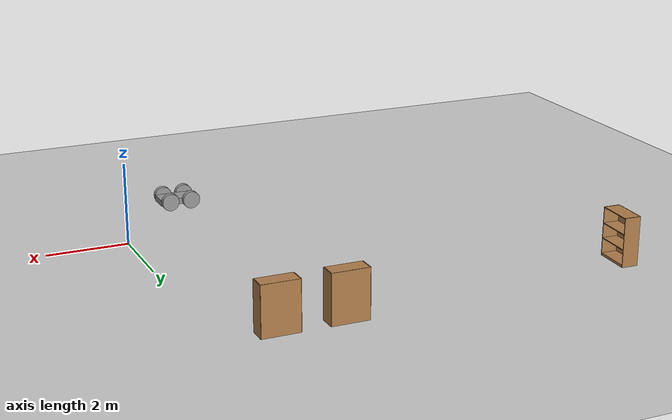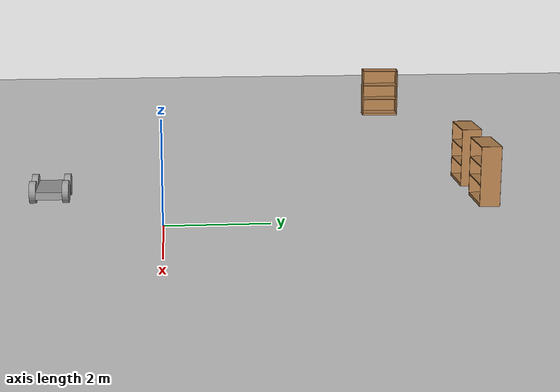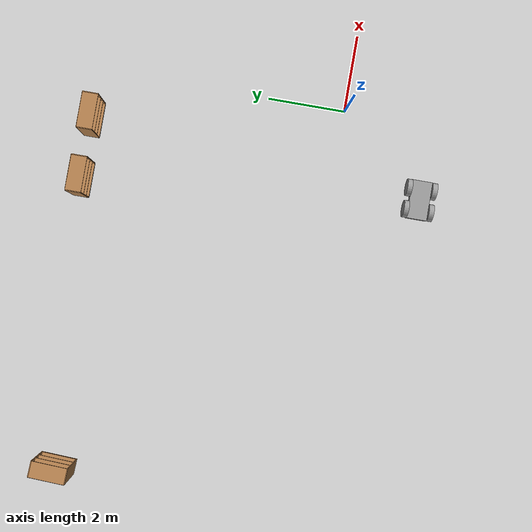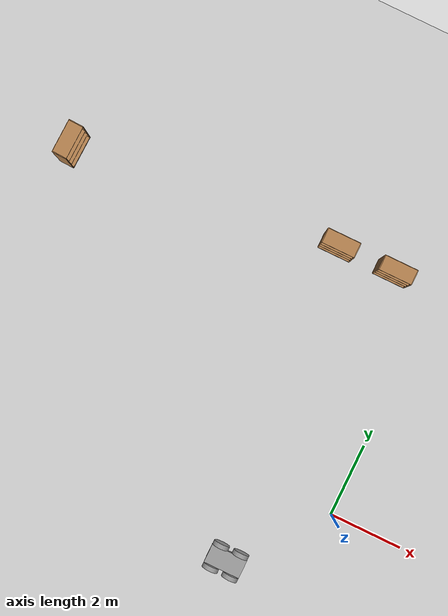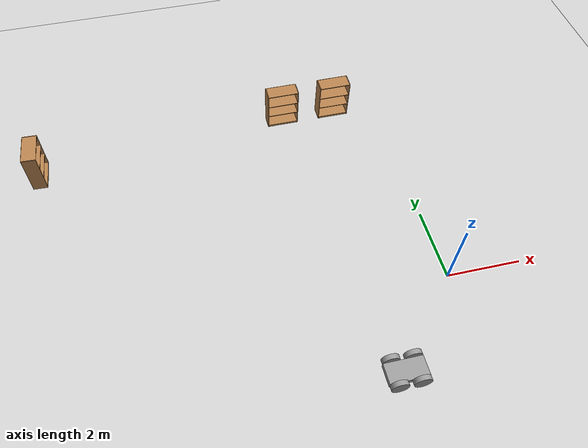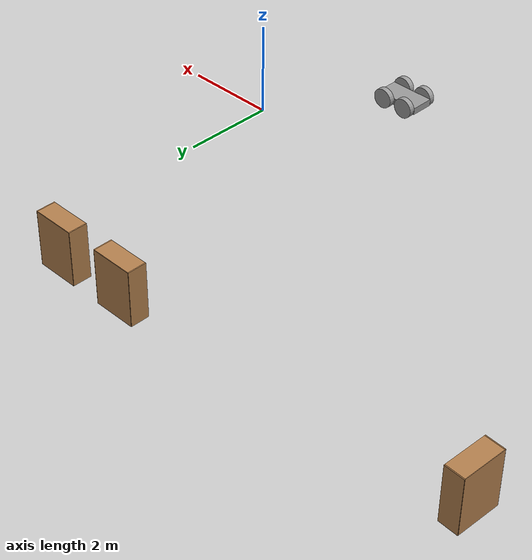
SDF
<sdf version="1.6">
 <world name="default">
  <model name="ground_plane">
   <static>1</static>
   <link name="link">
    <collision name="collision">
     <geometry><plane><normal>0 0 1</normal><size>100 100</size></plane></geometry>
     <surface>
      <contact><collide_bitmask>65535</collide_bitmask></contact>
      <friction><ode><mu>100</mu><mu2>50</mu2></ode></friction>
     </surface>
    </collision>
    <visual name="visual">
     <cast_shadows>0</cast_shadows>
     <geometry><plane><normal>0 0 1</normal><size>100 100</size></plane></geometry>
     <material>
      <script><uri>file://media/materials/scripts/gazebo.material</uri><name>Gazebo/Grey</name></script>
     </material>
    </visual>
   </link>
  </model>
  <model name="bookshelf_2">
   <static>1</static>
   <link name="link">
    <inertial><mass>1</mass></inertial>
    <collision name="back">
     <pose>0 0.005 0.6 0 -0 0</pose>
     <geometry><box><size>0.9 0.01 1.2</size></box></geometry>
    </collision>
    <visual name="visual1">
     <pose>0 0.005 0.6 0 -0 0</pose>
     <geometry><box><size>0.9 0.01 1.2</size></box></geometry>
     <material>
      <script><uri>file://media/materials/scripts/gazebo.material</uri><name>Gazebo/Wood</name></script>
     </material>
    </visual>
    <collision name="left_side">
     <pose>0.45 -0.195 0.6 0 -0 0</pose>
     <geometry><box><size>0.02 0.4 1.2</size></box></geometry>
    </collision>
    <visual name="visual2">
     <pose>0.45 -0.195 0.6 0 -0 0</pose>
     <geometry><box><size>0.02 0.4 1.2</size></box></geometry>
     <material>
      <script><uri>file://media/materials/scripts/gazebo.material</uri><name>Gazebo/Wood</name></script>
     </material>
    </visual>
    <collision name="right_side">
     <pose>-0.45 -0.195 0.6 0 -0 0</pose>
     <geometry><box><size>0.02 0.4 1.2</size></box></geometry>
    </collision>
    <visual name="visual3">
     <pose>-0.45 -0.195 0.6 0 -0 0</pose>
     <geometry><box><size>0.02 0.4 1.2</size></box></geometry>
     <material>
      <script><uri>file://media/materials/scripts/gazebo.material</uri><name>Gazebo/Wood</name></script>
     </material>
    </visual>
    <collision name="bottom">
     <pose>0 -0.195 0.03 0 -0 0</pose>
     <geometry><box><size>0.88 0.4 0.06</size></box></geometry>
    </collision>
    <visual name="visual4">
     <pose>0 -0.195 0.03 0 -0 0</pose>
     <geometry><box><size>0.88 0.4 0.06</size></box></geometry>
     <material>
      <script><uri>file://media/materials/scripts/gazebo.material</uri><name>Gazebo/Wood</name></script>
     </material>
    </visual>
    <collision name="top">
     <pose>0 -0.195 1.19 0 -0 0</pose>
     <geometry><box><size>0.88 0.4 0.02</size></box></geometry>
    </collision>
    <visual name="visual5">
     <pose>0 -0.195 1.19 0 -0 0</pose>
     <geometry><box><size>0.88 0.4 0.02</size></box></geometry>
     <material>
      <script><uri>file://media/materials/scripts/gazebo.material</uri><name>Gazebo/Wood</name></script>
     </material>
    </visual>
    <collision name="low_shelf">
     <pose>0 -0.195 0.43 0 -0 0</pose>
     <geometry><box><size>0.88 0.4 0.02</size></box></geometry>
    </collision>
    <visual name="visual6">
     <pose>0 -0.195 0.43 0 -0 0</pose>
     <geometry><box><size>0.88 0.4 0.02</size></box></geometry>
     <material>
      <script><uri>file://media/materials/scripts/gazebo.material</uri><name>Gazebo/Wood</name></script>
     </material>
    </visual>
    <collision name="high_shelf">
     <pose>0 -0.195 0.8 0 -0 0</pose>
     <geometry><box><size>0.88 0.4 0.02</size></box></geometry>
    </collision>
    <visual name="visual7">
     <pose>0 -0.195 0.8 0 -0 0</pose>
     <geometry><box><size>0.88 0.4 0.02</size></box></geometry>
     <material>
      <script><uri>file://media/materials/scripts/gazebo.material</uri><name>Gazebo/Wood</name></script>
     </material>
    </visual>
   </link>
   <pose>-2.89056 6.54728 0 0 -0 0</pose>
  </model>
  <model name="bookshelf">
   <static>1</static>
   <link name="link">
    <inertial><mass>1</mass></inertial>
    <collision name="back">
     <pose>0 0.005 0.6 0 -0 0</pose>
     <geometry><box><size>0.9 0.01 1.2</size></box></geometry>
    </collision>
    <visual name="visual1">
     <pose>0 0.005 0.6 0 -0 0</pose>
     <geometry><box><size>0.9 0.01 1.2</size></box></geometry>
     <material>
      <script><uri>file://media/materials/scripts/gazebo.material</uri><name>Gazebo/Wood</name></script>
     </material>
    </visual>
    <collision name="left_side">
     <pose>0.45 -0.195 0.6 0 -0 0</pose>
     <geometry><box><size>0.02 0.4 1.2</size></box></geometry>
    </collision>
    <visual name="visual2">
     <pose>0.45 -0.195 0.6 0 -0 0</pose>
     <geometry><box><size>0.02 0.4 1.2</size></box></geometry>
     <material>
      <script><uri>file://media/materials/scripts/gazebo.material</uri><name>Gazebo/Wood</name></script>
     </material>
    </visual>
    <collision name="right_side">
     <pose>-0.45 -0.195 0.6 0 -0 0</pose>
     <geometry><box><size>0.02 0.4 1.2</size></box></geometry>
    </collision>
    <visual name="visual3">
     <pose>-0.45 -0.195 0.6 0 -0 0</pose>
     <geometry><box><size>0.02 0.4 1.2</size></box></geometry>
     <material>
      <script><uri>file://media/materials/scripts/gazebo.material</uri><name>Gazebo/Wood</name></script>
     </material>
    </visual>
    <collision name="bottom">
     <pose>0 -0.195 0.03 0 -0 0</pose>
     <geometry><box><size>0.88 0.4 0.06</size></box></geometry>
    </collision>
    <visual name="visual4">
     <pose>0 -0.195 0.03 0 -0 0</pose>
     <geometry><box><size>0.88 0.4 0.06</size></box></geometry>
     <material>
      <script><uri>file://media/materials/scripts/gazebo.material</uri><name>Gazebo/Wood</name></script>
     </material>
    </visual>
    <collision name="top">
     <pose>0 -0.195 1.19 0 -0 0</pose>
     <geometry><box><size>0.88 0.4 0.02</size></box></geometry>
    </collision>
    <visual name="visual5">
     <pose>0 -0.195 1.19 0 -0 0</pose>
     <geometry><box><size>0.88 0.4 0.02</size></box></geometry>
     <material>
      <script><uri>file://media/materials/scripts/gazebo.material</uri><name>Gazebo/Wood</name></script>
     </material>
    </visual>
    <collision name="low_shelf">
     <pose>0 -0.195 0.43 0 -0 0</pose>
     <geometry><box><size>0.88 0.4 0.02</size></box></geometry>
    </collision>
    <visual name="visual6">
     <pose>0 -0.195 0.43 0 -0 0</pose>
     <geometry><box><size>0.88 0.4 0.02</size></box></geometry>
     <material>
      <script><uri>file://media/materials/scripts/gazebo.material</uri><name>Gazebo/Wood</name></script>
     </material>
    </visual>
    <collision name="high_shelf">
     <pose>0 -0.195 0.8 0 -0 0</pose>
     <geometry><box><size>0.88 0.4 0.02</size></box></geometry>
    </collision>
    <visual name="visual7">
     <pose>0 -0.195 0.8 0 -0 0</pose>
     <geometry><box><size>0.88 0.4 0.02</size></box></geometry>
     <material>
      <script><uri>file://media/materials/scripts/gazebo.material</uri><name>Gazebo/Wood</name></script>
     </material>
    </visual>
   </link>
   <pose>-1.31133 6.55446 0 0 -0 0</pose>
  </model>
  <model name="bookshelf_0">
   <static>1</static>
   <link name="link">
    <inertial><mass>1</mass></inertial>
    <collision name="back">
     <pose>0 0.005 0.6 0 -0 0</pose>
     <geometry><box><size>0.9 0.01 1.2</size></box></geometry>
    </collision>
    <visual name="visual1">
     <pose>0 0.005 0.6 0 -0 0</pose>
     <geometry><box><size>0.9 0.01 1.2</size></box></geometry>
     <material>
      <script><uri>file://media/materials/scripts/gazebo.material</uri><name>Gazebo/Wood</name></script>
     </material>
    </visual>
    <collision name="left_side">
     <pose>0.45 -0.195 0.6 0 -0 0</pose>
     <geometry><box><size>0.02 0.4 1.2</size></box></geometry>
    </collision>
    <visual name="visual2">
     <pose>0.45 -0.195 0.6 0 -0 0</pose>
     <geometry><box><size>0.02 0.4 1.2</size></box></geometry>
     <material>
      <script><uri>file://media/materials/scripts/gazebo.material</uri><name>Gazebo/Wood</name></script>
     </material>
    </visual>
    <collision name="right_side">
     <pose>-0.45 -0.195 0.6 0 -0 0</pose>
     <geometry><box><size>0.02 0.4 1.2</size></box></geometry>
    </collision>
    <visual name="visual3">
     <pose>-0.45 -0.195 0.6 0 -0 0</pose>
     <geometry><box><size>0.02 0.4 1.2</size></box></geometry>
     <material>
      <script><uri>file://media/materials/scripts/gazebo.material</uri><name>Gazebo/Wood</name></script>
     </material>
    </visual>
    <collision name="bottom">
     <pose>0 -0.195 0.03 0 -0 0</pose>
     <geometry><box><size>0.88 0.4 0.06</size></box></geometry>
    </collision>
    <visual name="visual4">
     <pose>0 -0.195 0.03 0 -0 0</pose>
     <geometry><box><size>0.88 0.4 0.06</size></box></geometry>
     <material>
      <script><uri>file://media/materials/scripts/gazebo.material</uri><name>Gazebo/Wood</name></script>
     </material>
    </visual>
    <collision name="top">
     <pose>0 -0.195 1.19 0 -0 0</pose>
     <geometry><box><size>0.88 0.4 0.02</size></box></geometry>
    </collision>
    <visual name="visual5">
     <pose>0 -0.195 1.19 0 -0 0</pose>
     <geometry><box><size>0.88 0.4 0.02</size></box></geometry>
     <material>
      <script><uri>file://media/materials/scripts/gazebo.material</uri><name>Gazebo/Wood</name></script>
     </material>
    </visual>
    <collision name="low_shelf">
     <pose>0 -0.195 0.43 0 -0 0</pose>
     <geometry><box><size>0.88 0.4 0.02</size></box></geometry>
    </collision>
    <visual name="visual6">
     <pose>0 -0.195 0.43 0 -0 0</pose>
     <geometry><box><size>0.88 0.4 0.02</size></box></geometry>
     <material>
      <script><uri>file://media/materials/scripts/gazebo.material</uri><name>Gazebo/Wood</name></script>
     </material>
    </visual>
    <collision name="high_shelf">
     <pose>0 -0.195 0.8 0 -0 0</pose>
     <geometry><box><size>0.88 0.4 0.02</size></box></geometry>
    </collision>
    <visual name="visual7">
     <pose>0 -0.195 0.8 0 -0 0</pose>
     <geometry><box><size>0.88 0.4 0.02</size></box></geometry>
     <material>
      <script><uri>file://media/materials/scripts/gazebo.material</uri><name>Gazebo/Wood</name></script>
     </material>
    </visual>
   </link>
   <pose>-10.3656 5.7332 0 0 -0 1.52719</pose>
  </model>
  <model name="wheeled_robot_0">
   <link name="link_0">
    <pose>-0 -0 -0.025902 0 -0 0</pose>
    <inertial>
     <mass>0.0772446</mass>
     <inertia>
      <ixx>0.00185631</ixx>
      <ixy>0</ixy>
      <ixz>0</ixz>
      <iyy>0.00652801</iyy>
      <iyz>0</iyz>
      <izz>0.00809275</izz>
     </inertia>
    </inertial>
    <visual name="visual">
     <geometry><box><size>0.995732 0.515491 0.150489</size></box></geometry>
     <material>
      <lighting>1</lighting>
      <script><uri>file://media/materials/scripts/gazebo.material</uri><name>Gazebo/Grey</name></script>
      <shader type="pixel"/>
      <ambient>0.3 0.3 0.3 1</ambient>
      <diffuse>0.7 0.7 0.7 1</diffuse>
      <specular>0.01 0.01 0.01 1</specular>
      <emissive>0 0 0 1</emissive>
     </material>
    </visual>
    <collision name="collision">
     <geometry><box><size>0.995732 0.515491 0.150489</size></box></geometry>
     <surface>
      <friction>
       <ode><mu>1</mu><mu2>1</mu2><fdir1>0 0 0</fdir1><slip1>0</slip1><slip2>0</slip2></ode>
       <torsional>
        <coefficient>1</coefficient>
        <patch_radius>0</patch_radius>
        <surface_radius>0</surface_radius>
        <use_patch_radius>1</use_patch_radius>
        <ode><slip>0</slip></ode>
       </torsional>
      </friction>
      <bounce><restitution_coefficient>0</restitution_coefficient><threshold>1e+06</threshold></bounce>
      <contact>
       <collide_without_contact>0</collide_without_contact>
       <collide_without_contact_bitmask>1</collide_without_contact_bitmask>
       <collide_bitmask>1</collide_bitmask>
       <ode>
        <soft_cfm>0</soft_cfm>
        <soft_erp>0.2</soft_erp>
        <kp>1e+13</kp>
        <kd>1</kd>
        <max_vel>0.01</max_vel>
        <min_depth>0</min_depth>
       </ode>
       <bullet>
        <split_impulse>1</split_impulse>
        <split_impulse_penetration_threshold>-0.01</split_impulse_penetration_threshold>
        <soft_cfm>0</soft_cfm>
        <soft_erp>0.2</soft_erp>
        <kp>1e+13</kp>
        <kd>1</kd>
       </bullet>
      </contact>
     </surface>
    </collision>
   </link>
   <link name="link_1">
    <pose>0.276969 -0.320255 0.006476 1.5708 -0 0</pose>
    <inertial>
     <mass>0.0244029</mass>
     <inertia>
      <ixx>0.00032947</ixx>
      <ixy>0</ixy>
      <ixz>0</ixz>
      <iyy>0.00032947</iyy>
      <iyz>0</iyz>
      <izz>0.00059538</izz>
     </inertia>
    </inertial>
    <visual name="visual">
     <geometry><cylinder><radius>0.220898</radius><length>0.125017</length></cylinder></geometry>
     <material>
      <lighting>1</lighting>
      <script><uri>file://media/materials/scripts/gazebo.material</uri><name>Gazebo/Grey</name></script>
      <shader type="pixel"><normal_map>__default__</normal_map></shader>
      <ambient>0.3 0.3 0.3 1</ambient>
      <diffuse>0.7 0.7 0.7 1</diffuse>
      <specular>0.01 0.01 0.01 1</specular>
      <emissive>0 0 0 1</emissive>
     </material>
    </visual>
    <collision name="collision">
     <geometry><cylinder><radius>0.220898</radius><length>0.125017</length></cylinder></geometry>
     <surface>
      <friction>
       <ode><mu>1</mu><mu2>1</mu2><fdir1>0 0 0</fdir1><slip1>0</slip1><slip2>0</slip2></ode>
       <torsional>
        <coefficient>1</coefficient>
        <patch_radius>0</patch_radius>
        <surface_radius>0</surface_radius>
        <use_patch_radius>1</use_patch_radius>
        <ode><slip>0</slip></ode>
       </torsional>
      </friction>
      <bounce><restitution_coefficient>0</restitution_coefficient><threshold>1e+06</threshold></bounce>
      <contact>
       <collide_without_contact>0</collide_without_contact>
       <collide_without_contact_bitmask>1</collide_without_contact_bitmask>
       <collide_bitmask>1</collide_bitmask>
       <ode>
        <soft_cfm>0</soft_cfm>
        <soft_erp>0.2</soft_erp>
        <kp>1e+13</kp>
        <kd>1</kd>
        <max_vel>0.01</max_vel>
        <min_depth>0</min_depth>
       </ode>
       <bullet>
        <split_impulse>1</split_impulse>
        <split_impulse_penetration_threshold>-0.01</split_impulse_penetration_threshold>
        <soft_cfm>0</soft_cfm>
        <soft_erp>0.2</soft_erp>
        <kp>1e+13</kp>
        <kd>1</kd>
       </bullet>
      </contact>
     </surface>
    </collision>
   </link>
   <link name="link_1_clone">
    <pose>-0.276969 -0.320255 0.006475 1.5708 -0 0</pose>
    <inertial>
     <mass>0.0244029</mass>
     <inertia>
      <ixx>0.00032947</ixx>
      <ixy>0</ixy>
      <ixz>0</ixz>
      <iyy>0.00032947</iyy>
      <iyz>0</iyz>
      <izz>0.00059538</izz>
     </inertia>
    </inertial>
    <visual name="visual">
     <geometry><cylinder><radius>0.220898</radius><length>0.125017</length></cylinder></geometry>
     <material>
      <lighting>1</lighting>
      <script><uri>file://media/materials/scripts/gazebo.material</uri><name>Gazebo/Grey</name></script>
      <shader type="pixel"><normal_map>__default__</normal_map></shader>
      <ambient>0.3 0.3 0.3 1</ambient>
      <diffuse>0.7 0.7 0.7 1</diffuse>
      <specular>0.01 0.01 0.01 1</specular>
      <emissive>0 0 0 1</emissive>
     </material>
    </visual>
    <collision name="collision">
     <geometry><cylinder><radius>0.220898</radius><length>0.125017</length></cylinder></geometry>
     <surface>
      <friction>
       <ode><mu>1</mu><mu2>1</mu2><fdir1>0 0 0</fdir1><slip1>0</slip1><slip2>0</slip2></ode>
       <torsional>
        <coefficient>1</coefficient>
        <patch_radius>0</patch_radius>
        <surface_radius>0</surface_radius>
        <use_patch_radius>1</use_patch_radius>
        <ode><slip>0</slip></ode>
       </torsional>
      </friction>
      <bounce><restitution_coefficient>0</restitution_coefficient><threshold>1e+06</threshold></bounce>
      <contact>
       <collide_without_contact>0</collide_without_contact>
       <collide_without_contact_bitmask>1</collide_without_contact_bitmask>
       <collide_bitmask>1</collide_bitmask>
       <ode>
        <soft_cfm>0</soft_cfm>
        <soft_erp>0.2</soft_erp>
        <kp>1e+13</kp>
        <kd>1</kd>
        <max_vel>0.01</max_vel>
        <min_depth>0</min_depth>
       </ode>
       <bullet>
        <split_impulse>1</split_impulse>
        <split_impulse_penetration_threshold>-0.01</split_impulse_penetration_threshold>
        <soft_cfm>0</soft_cfm>
        <soft_erp>0.2</soft_erp>
        <kp>1e+13</kp>
        <kd>1</kd>
       </bullet>
      </contact>
     </surface>
    </collision>
   </link>
   <link name="link_1_clone_0">
    <pose>0.276969 0.320255 0.006476 1.5708 -0 0</pose>
    <inertial>
     <mass>0.0244029</mass>
     <inertia>
      <ixx>0.00032947</ixx>
      <ixy>0</ixy>
      <ixz>0</ixz>
      <iyy>0.00032947</iyy>
      <iyz>0</iyz>
      <izz>0.00059538</izz>
     </inertia>
    </inertial>
    <visual name="visual">
     <geometry><cylinder><radius>0.220898</radius><length>0.125017</length></cylinder></geometry>
     <material>
      <lighting>1</lighting>
      <script><uri>file://media/materials/scripts/gazebo.material</uri><name>Gazebo/Grey</name></script>
      <shader type="pixel"><normal_map>__default__</normal_map></shader>
      <ambient>0.3 0.3 0.3 1</ambient>
      <diffuse>0.7 0.7 0.7 1</diffuse>
      <specular>0.01 0.01 0.01 1</specular>
      <emissive>0 0 0 1</emissive>
     </material>
    </visual>
    <collision name="collision">
     <geometry><cylinder><radius>0.220898</radius><length>0.125017</length></cylinder></geometry>
     <surface>
      <friction>
       <ode><mu>1</mu><mu2>1</mu2><fdir1>0 0 0</fdir1><slip1>0</slip1><slip2>0</slip2></ode>
       <torsional>
        <coefficient>1</coefficient>
        <patch_radius>0</patch_radius>
        <surface_radius>0</surface_radius>
        <use_patch_radius>1</use_patch_radius>
        <ode><slip>0</slip></ode>
       </torsional>
      </friction>
      <bounce><restitution_coefficient>0</restitution_coefficient><threshold>1e+06</threshold></bounce>
      <contact>
       <collide_without_contact>0</collide_without_contact>
       <collide_without_contact_bitmask>1</collide_without_contact_bitmask>
       <collide_bitmask>1</collide_bitmask>
       <ode>
        <soft_cfm>0</soft_cfm>
        <soft_erp>0.2</soft_erp>
        <kp>1e+13</kp>
        <kd>1</kd>
        <max_vel>0.01</max_vel>
        <min_depth>0</min_depth>
       </ode>
       <bullet>
        <split_impulse>1</split_impulse>
        <split_impulse_penetration_threshold>-0.01</split_impulse_penetration_threshold>
        <soft_cfm>0</soft_cfm>
        <soft_erp>0.2</soft_erp>
        <kp>1e+13</kp>
        <kd>1</kd>
       </bullet>
      </contact>
     </surface>
    </collision>
   </link>
   <link name="link_1_clone_1">
    <pose>-0.276969 0.320255 0.006476 1.5708 -0 0</pose>
    <inertial>
     <mass>0.0244029</mass>
     <inertia>
      <ixx>0.00032947</ixx>
      <ixy>0</ixy>
      <ixz>0</ixz>
      <iyy>0.00032947</iyy>
      <iyz>0</iyz>
      <izz>0.00059538</izz>
     </inertia>
    </inertial>
    <visual name="visual">
     <geometry><cylinder><radius>0.220898</radius><length>0.125017</length></cylinder></geometry>
     <material>
      <lighting>1</lighting>
      <script><uri>file://media/materials/scripts/gazebo.material</uri><name>Gazebo/Grey</name></script>
      <shader type="pixel"><normal_map>__default__</normal_map></shader>
      <ambient>0.3 0.3 0.3 1</ambient>
      <diffuse>0.7 0.7 0.7 1</diffuse>
      <specular>0.01 0.01 0.01 1</specular>
      <emissive>0 0 0 1</emissive>
     </material>
    </visual>
    <collision name="collision">
     <geometry><cylinder><radius>0.220898</radius><length>0.125017</length></cylinder></geometry>
     <surface>
      <friction>
       <ode><mu>1</mu><mu2>1</mu2><fdir1>0 0 0</fdir1><slip1>0</slip1><slip2>0</slip2></ode>
       <torsional>
        <coefficient>1</coefficient>
        <patch_radius>0</patch_radius>
        <surface_radius>0</surface_radius>
        <use_patch_radius>1</use_patch_radius>
        <ode><slip>0</slip></ode>
       </torsional>
      </friction>
      <bounce><restitution_coefficient>0</restitution_coefficient><threshold>1e+06</threshold></bounce>
      <contact>
       <collide_without_contact>0</collide_without_contact>
       <collide_without_contact_bitmask>1</collide_without_contact_bitmask>
       <collide_bitmask>1</collide_bitmask>
       <ode>
        <soft_cfm>0</soft_cfm>
        <soft_erp>0.2</soft_erp>
        <kp>1e+13</kp>
        <kd>1</kd>
        <max_vel>0.01</max_vel>
        <min_depth>0</min_depth>
       </ode>
       <bullet>
        <split_impulse>1</split_impulse>
        <split_impulse_penetration_threshold>-0.01</split_impulse_penetration_threshold>
        <soft_cfm>0</soft_cfm>
        <soft_erp>0.2</soft_erp>
        <kp>1e+13</kp>
        <kd>1</kd>
       </bullet>
      </contact>
     </surface>
    </collision>
   </link>
   <joint name="link_0_JOINT_0" type="revolute">
    <parent>link_0</parent>
    <child>link_1</child>
    <axis>
     <xyz>0 0 1</xyz>
     <use_parent_model_frame>0</use_parent_model_frame>
     <limit>
      <lower>-1.79769e+308</lower>
      <upper>1.79769e+308</upper>
      <effort>-1</effort>
      <velocity>-1</velocity>
     </limit>
     <dynamics>
      <spring_reference>0</spring_reference>
      <spring_stiffness>0</spring_stiffness>
      <damping>0</damping>
     </dynamics>
    </axis>
    <physics>
     <ode><limit><cfm>0</cfm><erp>0.2</erp></limit><suspension><cfm>0</cfm><erp>0.2</erp></suspension></ode>
    </physics>
   </joint>
   <joint name="link_0_JOINT_1" type="revolute">
    <parent>link_0</parent>
    <child>link_1_clone</child>
    <axis>
     <xyz>0 0 1</xyz>
     <use_parent_model_frame>0</use_parent_model_frame>
     <limit>
      <lower>-1.79769e+308</lower>
      <upper>1.79769e+308</upper>
      <effort>-1</effort>
      <velocity>-1</velocity>
     </limit>
     <dynamics>
      <spring_reference>0</spring_reference>
      <spring_stiffness>0</spring_stiffness>
      <damping>0</damping>
     </dynamics>
    </axis>
    <physics>
     <ode><limit><cfm>0</cfm><erp>0.2</erp></limit><suspension><cfm>0</cfm><erp>0.2</erp></suspension></ode>
    </physics>
   </joint>
   <joint name="link_0_JOINT_2" type="revolute">
    <parent>link_0</parent>
    <child>link_1_clone_0</child>
    <axis>
     <xyz>0 0 1</xyz>
     <use_parent_model_frame>0</use_parent_model_frame>
     <limit>
      <lower>-1.79769e+308</lower>
      <upper>1.79769e+308</upper>
      <effort>-1</effort>
      <velocity>-1</velocity>
     </limit>
     <dynamics>
      <spring_reference>0</spring_reference>
      <spring_stiffness>0</spring_stiffness>
      <damping>0</damping>
     </dynamics>
    </axis>
    <physics>
     <ode><limit><cfm>0</cfm><erp>0.2</erp></limit><suspension><cfm>0</cfm><erp>0.2</erp></suspension></ode>
    </physics>
   </joint>
   <joint name="link_0_JOINT_3" type="revolute">
    <parent>link_0</parent>
    <child>link_1_clone_1</child>
    <axis>
     <xyz>0 0 1</xyz>
     <use_parent_model_frame>0</use_parent_model_frame>
     <limit>
      <lower>-1.79769e+308</lower>
      <upper>1.79769e+308</upper>
      <effort>-1</effort>
      <velocity>-1</velocity>
     </limit>
     <dynamics>
      <spring_reference>0</spring_reference>
      <spring_stiffness>0</spring_stiffness>
      <damping>0</damping>
     </dynamics>
    </axis>
    <physics>
     <ode><limit><cfm>0</cfm><erp>0.2</erp></limit><suspension><cfm>0</cfm><erp>0.2</erp></suspension></ode>
    </physics>
   </joint>
   <static>0</static>
   <pose>-1.98243 -2.24257 0.233237 0 -0 0</pose>
  </model>
 </world>
</sdf>
